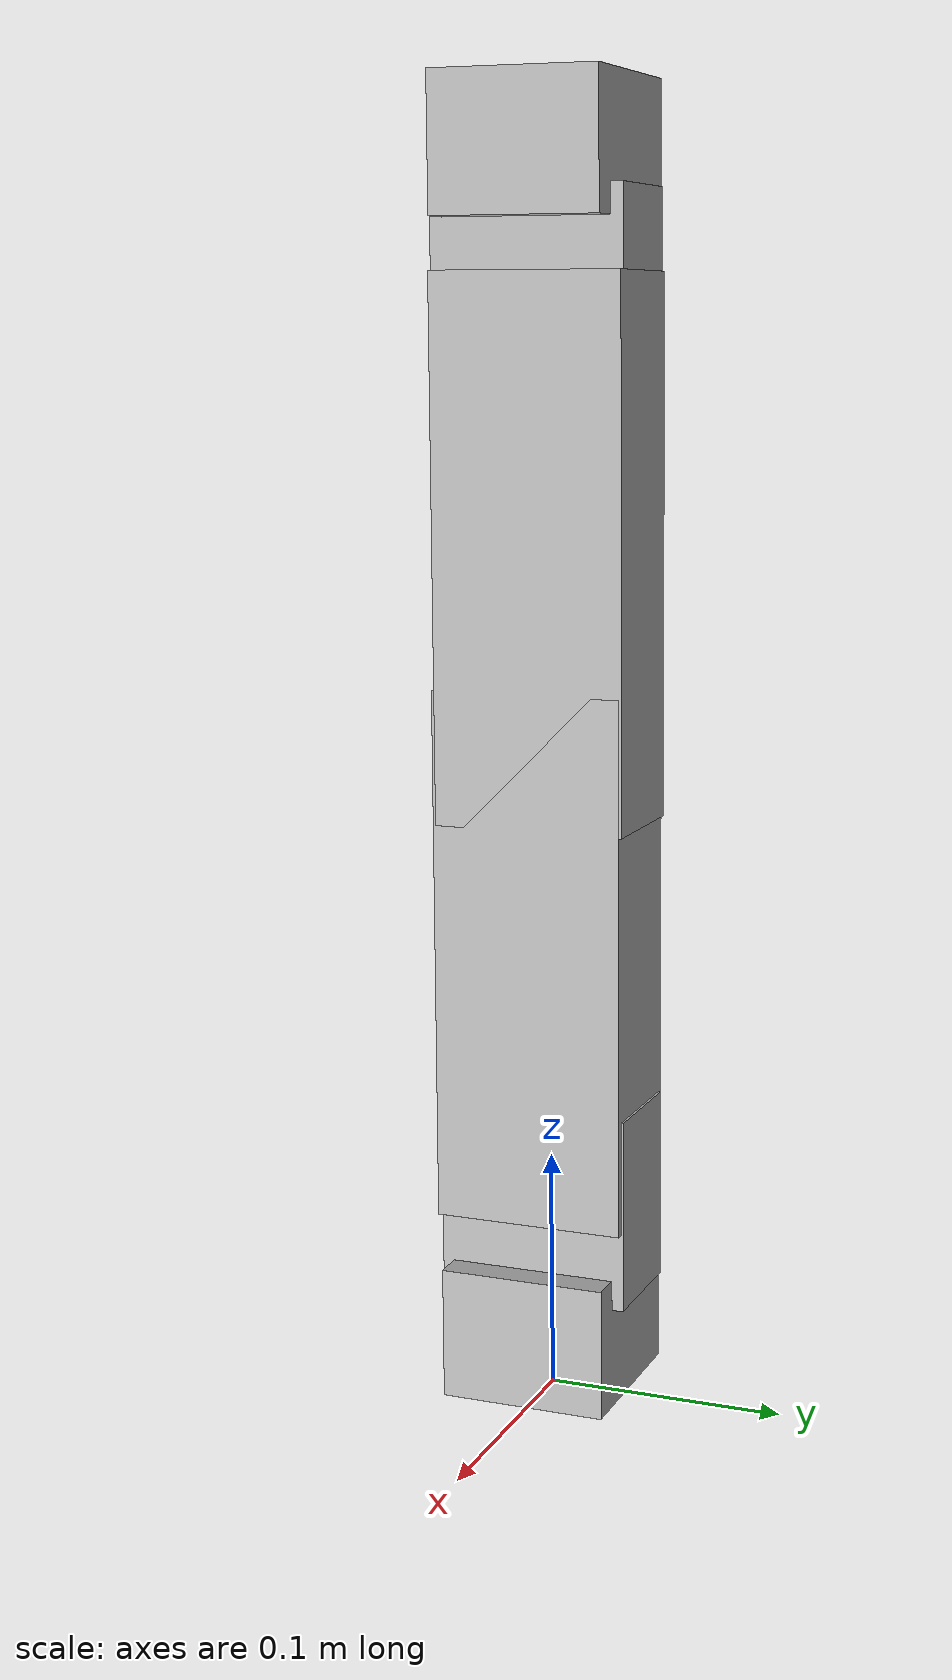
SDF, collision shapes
<sdf version='1.7'>
  <model name='inchworm'>
    <joint name='foot_to_world' type='fixed'>
      <pose relative_to='__model__'>0 0 0 0 -0 0</pose>
      <parent>world</parent>
      <child>iw_foot_bottom</child>
    </joint>
    <link name='iw_foot_bottom'>
      <pose relative_to='foot_to_world'>0 0 0 0 -0 0</pose>
      <inertial>
        <pose>0 0 0 0 -0 0</pose>
        <mass>0.151</mass>
        <inertia>
          <ixx>3.8554e-05</ixx>
          <ixy>9.4075e-07</ixy>
          <ixz>1.709e-06</ixz>
          <iyy>4.445e-05</iyy>
          <iyz>1.2246e-06</iyz>
          <izz>2.5729e-05</izz>
        </inertia>
      </inertial>
      <collision name='iw_foot_bottom_collision'>
        <pose>0 0 0.03 0 -0 0</pose>
        <geometry>
          <box>
            <size>0.07 0.07 0.05463</size>
          </box>
        </geometry>
      </collision>
      <visual name='iw_foot_bottom_visual'>
        <pose>-0.035 0.0425 0 1.57 -0 0</pose>
        <geometry>
          <mesh>
            <scale>0.001 0.001 0.001</scale>
            <uri>model://inchworm_description/meshes/ee.stl</uri>
          </mesh>
        </geometry>
      </visual>
    </link>
    <joint name='iw_ankle_foot_bottom' type='revolute'>
      <pose relative_to='iw_foot_bottom'>0 0 0.105 1.57 -0 0</pose>
      <parent>iw_foot_bottom</parent>
      <child>iw_ankle_bottom</child>
      <axis>
        <xyz>0 -1 0</xyz>
        <limit>
          <lower>-3.14</lower>
          <upper>3.14</upper>
          <effort>10</effort>
          <velocity>1</velocity>
        </limit>
        <dynamics>
          <spring_reference>0</spring_reference>
          <spring_stiffness>0</spring_stiffness>
        </dynamics>
      </axis>
    </joint>
    <link name='iw_ankle_bottom'>
      <pose relative_to='iw_ankle_foot_bottom'>0 0 0 0 -0 0</pose>
      <inertial>
        <pose>0 0 0 0 -0 0</pose>
        <mass>0.151</mass>
        <inertia>
          <ixx>3.8554e-05</ixx>
          <ixy>9.4075e-07</ixy>
          <ixz>1.709e-06</ixz>
          <iyy>4.445e-05</iyy>
          <iyz>1.2246e-06</iyz>
          <izz>2.5729e-05</izz>
        </inertia>
      </inertial>
      <collision name='iw_ankle_bottom_collision'>
        <pose>0 -0.02 0 0 -0 0</pose>
        <geometry>
          <box>
            <size>0.045 0.08 0.08</size>
          </box>
        </geometry>
      </collision>
      <visual name='iw_ankle_bottom_visual'>
        <pose>0 0 0 0 -0 0</pose>
        <geometry>
          <mesh>
            <scale>0.001 0.001 0.001</scale>
            <uri>model://inchworm_description/meshes/ankle.stl</uri>
          </mesh>
        </geometry>
      </visual>
    </link>
    <joint name='iw_beam_ankle_bottom' type='revolute'>
      <pose relative_to='iw_ankle_bottom'>0 0 0.001 0 -0 1.57</pose>
      <parent>iw_ankle_bottom</parent>
      <child>iw_beam_bottom</child>
      <axis>
        <xyz>0 0 -1</xyz>
        <limit>
          <lower>-0.785</lower>
          <upper>3.14</upper>
          <effort>10</effort>
          <velocity>1</velocity>
        </limit>
        <dynamics>
          <spring_reference>0</spring_reference>
          <spring_stiffness>0</spring_stiffness>
        </dynamics>
      </axis>
    </joint>
    <link name='iw_beam_bottom'>
      <pose relative_to='iw_beam_ankle_bottom'>0 0 0 0 -0 0</pose>
      <inertial>
        <pose>0 0 0 0 -0 0</pose>
        <mass>0.151</mass>
        <inertia>
          <ixx>3.8554e-05</ixx>
          <ixy>9.4075e-07</ixy>
          <ixz>1.709e-06</ixz>
          <iyy>4.445e-05</iyy>
          <iyz>1.2246e-06</iyz>
          <izz>2.5729e-05</izz>
        </inertia>
      </inertial>
      <collision name='iw_beam_bottom_collision'>
        <pose>0.0825 0 0 0 -0 0</pose>
        <geometry>
          <box>
            <size>0.22 0.05 0.08</size>
          </box>
        </geometry>
      </collision>
      <visual name='iw_beam_bottom_visual'>
        <pose>0.185 -0.03 0.022 3.14159 0.001593 3.14159</pose>
        <geometry>
          <mesh>
            <scale>0.001 0.001 0.001</scale>
            <uri>model://inchworm_description/meshes/beam_bottom.stl</uri>
          </mesh>
        </geometry>
      </visual>
    </link>
    <joint name='iw_mid_joint' type='revolute'>
      <pose relative_to='iw_beam_bottom'>0.165 0 -0.001 3.14 -0 3.14</pose>
      <parent>iw_beam_bottom</parent>
      <child>iw_beam_top</child>
      <axis>
        <xyz>0 0 1</xyz>
        <limit>
          <lower>-0.785</lower>
          <upper>3.14</upper>
          <effort>10</effort>
          <velocity>1</velocity>
        </limit>
        <dynamics>
          <spring_reference>0</spring_reference>
          <spring_stiffness>0</spring_stiffness>
        </dynamics>
      </axis>
    </joint>
    <link name='iw_beam_top'>
      <pose relative_to='iw_mid_joint'>0 0 0 0 -0 0</pose>
      <inertial>
        <pose>0 0 0 0 -0 0</pose>
        <mass>0.151</mass>
        <inertia>
          <ixx>3.8554e-05</ixx>
          <ixy>9.4075e-07</ixy>
          <ixz>1.709e-06</ixz>
          <iyy>4.445e-05</iyy>
          <iyz>1.2246e-06</iyz>
          <izz>2.5729e-05</izz>
        </inertia>
      </inertial>
      <collision name='iw_beam_top_collision'>
        <pose>-0.0825 0 0 0 -0 0</pose>
        <geometry>
          <box>
            <size>0.22 0.05 0.08</size>
          </box>
        </geometry>
      </collision>
      <visual name='iw_beam_top_visual'>
        <pose>0.02 0.0575 -0.0325 0 -0 3.14</pose>
        <geometry>
          <mesh>
            <scale>0.001 0.001 0.001</scale>
            <uri>model://inchworm_description/meshes/beam_top.stl</uri>
          </mesh>
        </geometry>
      </visual>
    </link>
    <joint name='iw_beam_ankle_top' type='revolute'>
      <pose relative_to='iw_beam_top'>-0.165 0 0 0 -0 0</pose>
      <parent>iw_beam_top</parent>
      <child>iw_ankle_top</child>
      <axis>
        <xyz>0 0 1</xyz>
        <limit>
          <lower>-0.785</lower>
          <upper>3.14</upper>
          <effort>10</effort>
          <velocity>1</velocity>
        </limit>
        <dynamics>
          <spring_reference>0</spring_reference>
          <spring_stiffness>0</spring_stiffness>
        </dynamics>
      </axis>
    </joint>
    <link name='iw_ankle_top'>
      <pose relative_to='iw_beam_ankle_top'>0 0 0 0 -0 0</pose>
      <inertial>
        <pose>0 0 0 0 -0 0</pose>
        <mass>0.151</mass>
        <inertia>
          <ixx>3.8554e-05</ixx>
          <ixy>9.4075e-07</ixy>
          <ixz>1.709e-06</ixz>
          <iyy>4.445e-05</iyy>
          <iyz>1.2246e-06</iyz>
          <izz>2.5729e-05</izz>
        </inertia>
      </inertial>
      <collision name='iw_ankle_top_collision'>
        <pose>-0.02 0 0 0 -0 0</pose>
        <geometry>
          <box>
            <size>0.08 0.045 0.08</size>
          </box>
        </geometry>
      </collision>
      <visual name='iw_ankle_top_visual'>
        <pose>0 0 0 0 0 -1.57</pose>
        <geometry>
          <mesh>
            <scale>0.001 0.001 0.001</scale>
            <uri>model://inchworm_description/meshes/ankle.stl</uri>
          </mesh>
        </geometry>
      </visual>
    </link>
    <joint name='iw_ankle_foot_top' type='revolute'>
      <pose relative_to='iw_ankle_top'>-0.105 0 0 0 1.57 0</pose>
      <parent>iw_ankle_top</parent>
      <child>iw_foot_top</child>
      <axis>
        <xyz>0 0 -1</xyz>
        <limit>
          <lower>-3.14</lower>
          <upper>3.14</upper>
          <effort>10</effort>
          <velocity>1</velocity>
        </limit>
        <dynamics>
          <spring_reference>0</spring_reference>
          <spring_stiffness>0</spring_stiffness>
        </dynamics>
      </axis>
    </joint>
    <link name='iw_foot_top'>
      <pose relative_to='iw_ankle_foot_top'>0 0 0 0 -0 0</pose>
      <inertial>
        <pose>0 0 0 0 -0 0</pose>
        <mass>0.151</mass>
        <inertia>
          <ixx>3.8554e-05</ixx>
          <ixy>9.4075e-07</ixy>
          <ixz>1.709e-06</ixz>
          <iyy>4.445e-05</iyy>
          <iyz>1.2246e-06</iyz>
          <izz>2.5729e-05</izz>
        </inertia>
      </inertial>
      <collision name='iw_foot_top_collision'>
        <pose>0 0 0.03 0 -0 0</pose>
        <geometry>
          <box>
            <size>0.07 0.07 0.05463</size>
          </box>
        </geometry>
      </collision>
      <visual name='iw_foot_top_visual'>
        <pose>-0.035 0.0425 0 1.57 -0 0</pose>
        <geometry>
          <mesh>
            <scale>0.001 0.001 0.001</scale>
            <uri>model://inchworm_description/meshes/ee.stl</uri>
          </mesh>
        </geometry>
      </visual>
    </link>
    <static>0</static>
    <plugin name='gazebo_ros_control' filename='libgazebo_ros_control.so'>
      <robotNamespace>/inchworm</robotNamespace>
    </plugin>
  </model>
</sdf>
